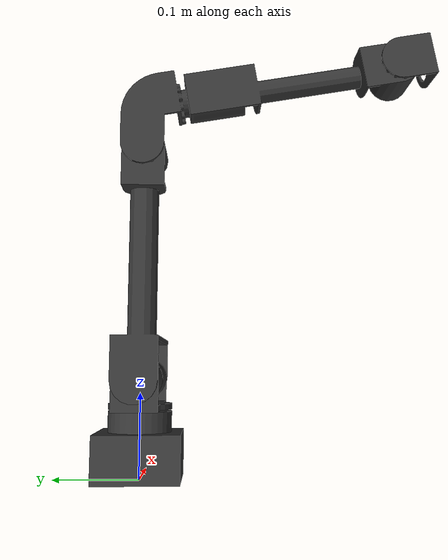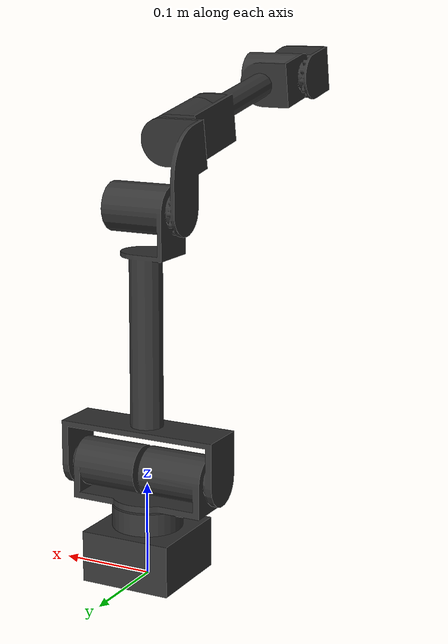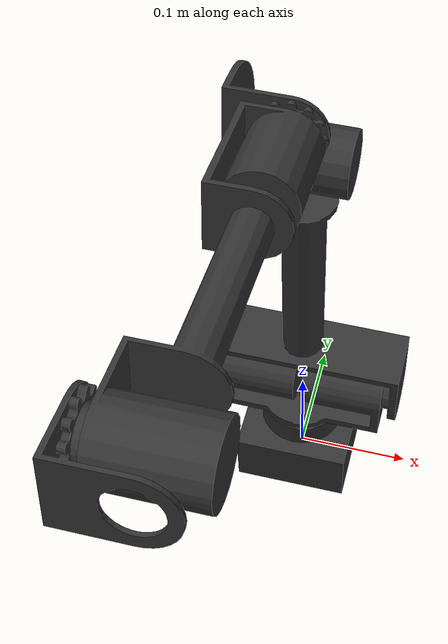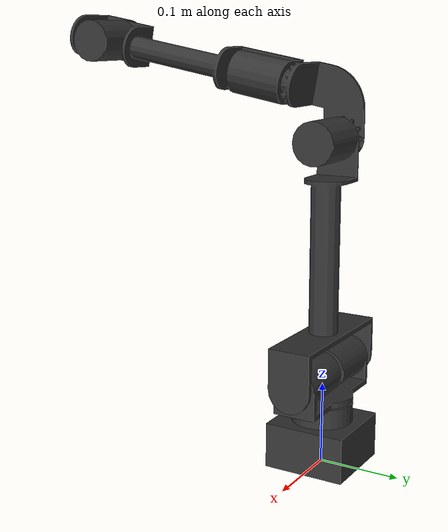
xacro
<?xml version="1.0"?>
<!-- Venus Manipulator -->
<robot xmlns:xacro="http://www.ros.org/wiki/xacro" name="venus_manipulator">
  <xacro:arg name="use_sim" default="false" />

  <!-- Enable setting arguments from the launch file -->
  <xacro:arg name="use_fake_hardware" default="false" />
  <xacro:arg name="fake_sensor_commands" default="false" />
  <xacro:arg name="prefix" default="" />
  <xacro:arg name="slowdown" default="2.0" />

  <!-- Import Venus macro -->
  <xacro:include filename="$(find venus_description)/urdf/venus_description.urdf.xacro" />

  <!-- Import all Gazebo-customization elements, including Gazebo colors -->

  <!-- Import Rviz colors -->
  <xacro:include filename="$(find venus_description)/gazebo/venus.materials.xacro" />

  <!-- Import Venus ros2_control description -->
  <xacro:include filename="$(find venus_description)/ros2_control/venus_system_position_only.ros2_control.xacro" />

  <!-- Used for fixing robot -->
  <link name="world"/>
  <gazebo reference="world">
    <static>true</static>
  </gazebo>

  <xacro:venus parent="world" prefix="$(arg prefix)">
    <origin xyz="0 0 0" rpy="0 0 0" />
  </xacro:venus>

  <xacro:venus_system_position_only
    name="VenusSystemPositionOnly" prefix="$(arg prefix)"
    use_fake_hardware="$(arg use_fake_hardware)"
    fake_sensor_commands="$(arg fake_sensor_commands)"
    slowdown="$(arg slowdown)" />

</robot>

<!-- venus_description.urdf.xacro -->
<robot xmlns:xacro="http://www.ros.org/wiki/xacro">

  <xacro:macro name="venus" params="parent prefix *origin">

  <!-- Constants for robot dimensions -->

  <joint name="${prefix}base_joint" type="fixed">
    <xacro:insert_block name="origin" />
    <parent link="${parent}"/>
    <child link="${prefix}base_link" />
  </joint>

  <!-- Base Link -->
  <link name="${prefix}base_link">
    <visual>
      <origin xyz="0 0 0" rpy="${pi/2} 0 0" />
      <geometry>
        <mesh filename="package://venus_description/meshes/base_link.STL" />
      </geometry>
      <material name="grey"/>
    </visual>

    <collision>
      <origin xyz="0 0 0" rpy="${pi/2} 0 0" />
      <geometry>
        <mesh filename="package://venus_description/meshes/base_link.STL" />
      </geometry>
    </collision>

    <inertial>
      <origin
        xyz="2.095325E-5 -4.245919E-6 4.2420025E-2"
        rpy="${radians(-0.069)} ${radians(-0.103)} ${radians(90.167)}" />
      <mass value="0.325378" />
      <inertia
        ixx="4.8663191E-4" ixy="2.9908669E-8" ixz="-2.25669762E-7"
        iyy="4.7623896E-4" iyz="1.8332926E-7"
        izz="6.2905340E-4" />
    </inertial>
  </link>

  <joint name="${prefix}joint1" type="continuous">
    <parent link="${prefix}base_link" />
    <child link="${prefix}link1" />
    <origin xyz="0 0 0.074" rpy="0 0 0" />
    <axis xyz="0 0 -1" />
    <limit effort="2" velocity="5.5" />
  </joint>

  <!-- Link1 -->
  <link name="${prefix}link1">
    <visual>
      <origin xyz="0 0 0" rpy="0 0 0" />
      <geometry>
        <mesh filename="package://venus_description/meshes/link1.STL" />
      </geometry>
      <material name="grey"/>
    </visual>

    <collision>
      <origin xyz="0 0 0" rpy="0 0 0" />
      <geometry>
        <mesh
          filename="package://venus_description/meshes/link1.STL" />
      </geometry>
    </collision>

    <inertial>
      <origin xyz="-6.2872E-18 7.6755E-18 0.035846" rpy="0 0 0" />
      <mass value="0.37205" />
      <inertia
        ixx="0.00018192" ixy="1.6333E-06" ixz="2.68E-21"
        iyy="0.00080831" iyz="-7.0181E-21"
        izz="0.0007698" />
    </inertial>
  </link>

  <joint name="${prefix}joint2" type="revolute">
    <parent link="${prefix}link1" />
    <child link="${prefix}link2" />
    <origin xyz="-0.089 0 0.042" rpy="0 0 0" />
    <axis xyz="-1 0 0" />
    <limit lower="-${pi/2}" upper="${pi/2}" effort="2" velocity="5.5" />
  </joint>

  <!-- Link2 -->
  <link name="${prefix}link2">
    <visual>
      <origin xyz="0 0 0" rpy="0 0 0" />
      <geometry>
        <mesh
          filename="package://venus_description/meshes/link2.STL" />
      </geometry>
      <material name="grey"/>
    </visual>

    <collision>
      <origin xyz="0 0 0" rpy="0 0 0" />
      <geometry>
        <mesh
          filename="package://venus_description/meshes/link2.STL" />
      </geometry>
    </collision>

    <inertial>
      <origin xyz="0.00027312 -6.8025E-07 0.11528" rpy="0 0 0" />
      <mass value="0.46302" />
      <inertia
        ixx="0.0050956" ixy="1.5226E-06" ixz="-2.4094E-05"
        iyy="0.0057069" iyz="6.0009E-08"
        izz="0.00074387" />
    </inertial>
  </link>

  <joint name="${prefix}joint3" type="revolute">
    <parent link="${prefix}link2" />
    <child link="${prefix}link3" />
    <origin xyz="0.05725 0 0.2789" rpy="0 0 ${pi}" />
    <axis xyz="-1 0 0" />
    <limit
      lower="-${pi/2}" upper="${pi/2}" effort="2" velocity="5.5" />
  </joint>

  <!-- Link3 -->
  <link name="${prefix}link3">
    <visual>
      <origin xyz="0 0 0" rpy="0 0 0" />
      <geometry>
        <mesh
          filename="package://venus_description/meshes/link3.STL" />
      </geometry>
      <material name="grey"/>
    </visual>

    <collision>
      <origin xyz="0 0 0" rpy="0 0 0" />
      <geometry>
        <mesh
          filename="package://venus_description/meshes/link3.STL" />
      </geometry>
    </collision>

    <inertial>
      <origin xyz="-0.0046535 0.020103 0.038177" rpy="0 0 0" />
      <mass value="0.06371" />
      <inertia
        ixx="9.6305E-05" ixy="2.2401E-05" ixz="2.2964E-05"
        iyy="9.2394E-05" iyz="-3.1351E-05"
        izz="6.149E-05" />
    </inertial>
  </link>

  <joint name="${prefix}joint4" type="revolute">
    <parent link="${prefix}link3" />
    <child link="${prefix}link4" />
    <origin xyz="-0.031631 0.052087 0.064988" rpy="${-80*pi/180} 0 0" />
    <axis xyz="0 0 -1" />
    <limit lower="-${pi}" upper="${pi}" effort="2" velocity="5.5" />
  </joint>

  <!-- Link4 -->
  <link name="${prefix}link4">
    <visual>
      <origin xyz="0 0 0" rpy="0 0 ${pi/2}" />
      <geometry>
        <mesh
          filename="package://venus_description/meshes/link4.STL" />
      </geometry>
      <material name="grey"/>
    </visual>

    <collision>
      <origin xyz="0 0 0" rpy="0 0 ${pi/2}" />
      <geometry>
        <mesh
          filename="package://venus_description/meshes/link4.STL" />
      </geometry>
    </collision>

    <inertial>
      <origin xyz="0 -0.0016144 0.1471" rpy="0 0 0" />
      <mass value="0.41614" />
      <inertia
        ixx="0.0046604" ixy="5.421E-20" ixz="-2.0329E-20"
        iyy="0.004614" iyz="-5.9856E-05"
        izz="0.00017165" />
    </inertial>
  </link>

  <joint name="${prefix}joint5" type="revolute">
    <parent link="${prefix}link4" />
    <child link="${prefix}link5" />
    <origin xyz="0 0 0.2684" rpy="0 0 0" />
    <axis xyz="-1 0 0" />
    <limit lower="-${pi/2}" upper="${pi/2}" effort="2" velocity="5.5" />
  </joint>

  <!-- Link5 -->
  <link name="${prefix}link5">
    <visual>
      <origin xyz="0.033 0 0" rpy="0 0 -0.15" />
      <geometry>
        <mesh
          filename="package://venus_description/meshes/link5.STL" />
      </geometry>
      <material name="grey"/>
    </visual>

    <collision>
      <origin xyz="0.033 0 0" rpy="0 0 -0.15" />
      <geometry>
        <mesh
          filename="package://venus_description/meshes/link5.STL" />
      </geometry>
    </collision>

    <inertial>
      <origin xyz="0.0026601 0.00039794 0.012151" rpy="0 0 0" />
      <mass value="0.030074" />
      <inertia
        ixx="1.6785E-05" ixy="-2.2863E-07" ixz="4.4532E-06"
        iyy="1.8279E-05" iyz="6.6617E-07"
        izz="1.2072E-05" />
    </inertial>
  </link>

  </xacro:macro>

</robot>

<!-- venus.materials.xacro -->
<!--
Copied from
https://github.com/ros-controls/ros2_control_demos/blob/master/ros2_control_demo_description/rrbot_description/gazebo/rrbot.materials.xacro
-->
<robot>

  <material name="black">
    <color rgba="0.0 0.0 0.0 1.0"/>
  </material>

  <material name="blue">
    <color rgba="0.0 0.0 0.8 1.0"/>
  </material>

  <material name="green">
    <color rgba="0.0 0.8 0.0 1.0"/>
  </material>

  <material name="grey">
    <color rgba="0.2 0.2 0.2 1.0"/>
  </material>

  <material name="orange">
    <color rgba="${255/255} ${108/255} ${10/255} 1.0"/>
  </material>

  <material name="brown">
    <color rgba="${222/255} ${207/255} ${195/255} 1.0"/>
  </material>

  <material name="red">
    <color rgba="0.8 0.0 0.0 1.0"/>
  </material>

  <material name="yellow">
    <color rgba="1.0 1.0 0.0 1.0"/>
  </material>

  <material name="white">
    <color rgba="1.0 1.0 1.0 1.0"/>
  </material>

</robot>
